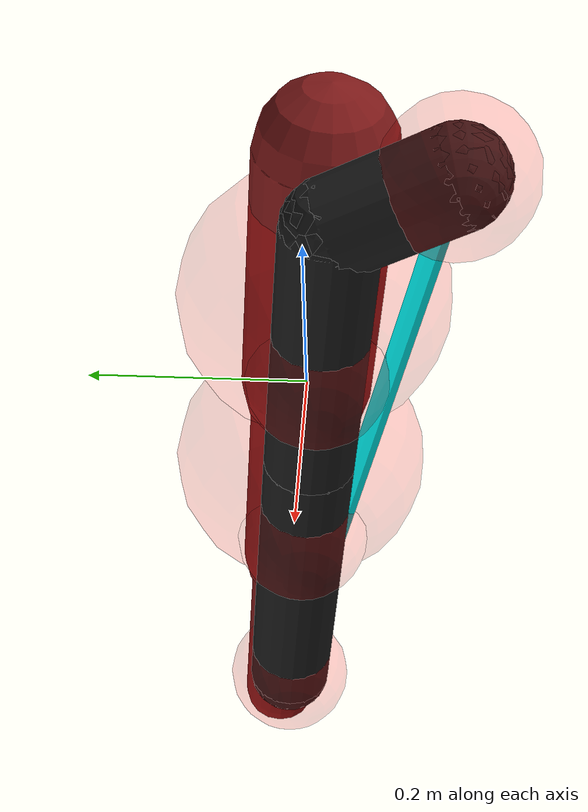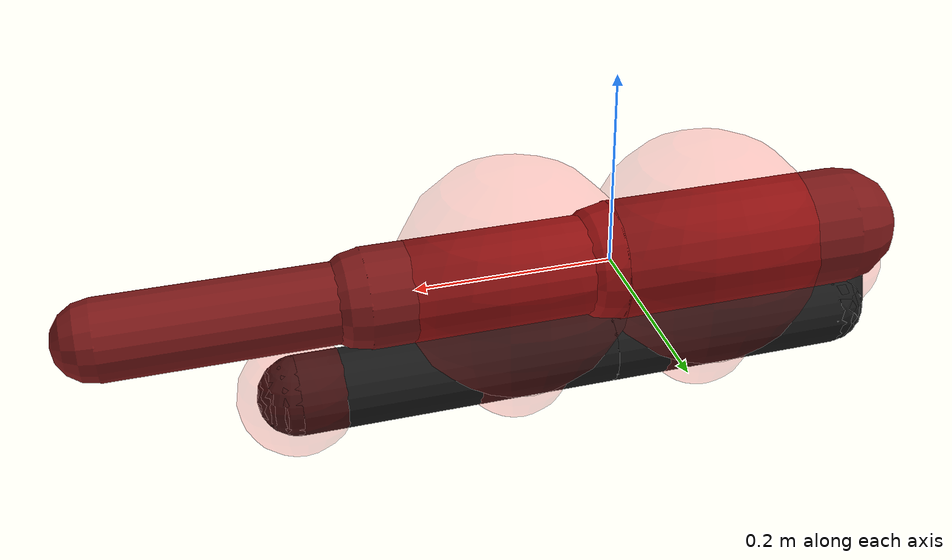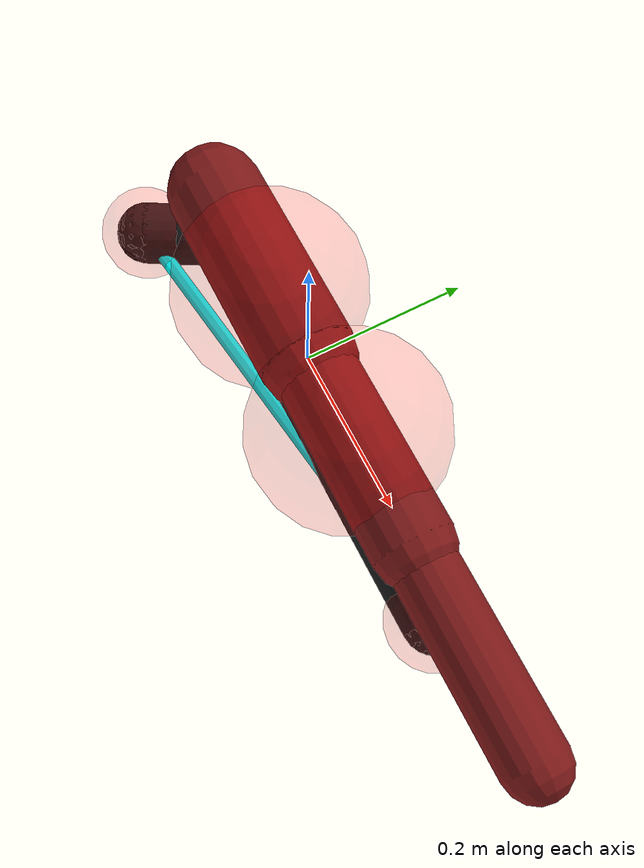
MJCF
<mujoco model="finger with orthotic">
    <option timestep="0.001" iterations="100" solver="Newton" tolerance="1e-8" integrator="implicitfast">
        <flag gravity="disable" contact="disable" energy="enable" />
    </option>

    <compiler angle="degree" />

    <visual>
        <rgba haze=".3 .3 .3 1" />
    </visual>

    <default>
        <joint type="hinge" pos="0 0 0" axis="0 0 1" stiffness="128.39516527813126" damping="0.6419758263906563" />
        <site size="0.06" rgba="1 0 0 .2" />
        <geom type="capsule" size="0.01" rgba=".1 .1 .1 1" />
        <tendon width="0.01" rgba="0 1 1 1" />
    </default>

    <asset>
        <texture type="skybox" builtin="gradient" rgb1="0.6 0.6 0.6" rgb2="0 0 0" width="512" height="512" />
        <texture name="texplane" type="2d" builtin="checker" rgb1=".25 .25 .25" rgb2=".3 .3 .3" width="512" height="512" mark="cross" markrgb=".8 .8 .8" />
        <material name="matplane" reflectance="0.3" texture="texplane" texrepeat="1 1" texuniform="true" />
    </asset>

    <worldbody>
        <light directional="true" diffuse=".8 .8 .8" specular=".2 .2 .2" pos="0 0 5" dir="0 0 -1" />
        <camera name="cam" pos="0 0 -1.2" xyaxes="1.000 0 0 0 -1.000 0" />

        <body name="finger" pos="0 0 0">
            <geom name="finger1" type="capsule" size="0.06" fromto="0 0 0  -.25 0 0" rgba=".5 .1 .1 1" />
            <site name="sPIPL" pos="-.1 0 0" size="0.12" />

            <body pos="0 0 0">
                <geom name="finger2" type="capsule" size="0.05" fromto="0 0 0  .25 0 0" rgba=".5 .1 .1 1" />
                <joint name="PIP" pos="0 0 0" stiffness="0" damping="0" />
                <site name="sPIPR" pos=".1 0 0" size="0.12" />

                <body pos=".25 0 0">
                    <geom name="finger3" type="capsule" size="0.04" fromto="0 0 0  .25 0 0" rgba=".5 .1 .1 1" />
                </body>
            </body>
        </body>

        <body name="orthosis" pos="0 0 -.1">
            <geom name="beamB" type="capsule" size="0.04" fromto="0.0 0.0 0.0 -0.25 -3.061616997868383e-17 0.0" />
            <site name="hBAL" pos="-.1 0 0" size="0.06" />

            <body name="Bnext" pos="0 0 0">
                <joint name="hingeBA" type="hinge" pos="0 0 0" axis="0 0 1" stiffness="128.39516527813126" damping="0.6419758263906563" />
                <site name="hBAR" pos=".1 0 0" size="0.06" />
                <geom name="beamA" type="capsule" size="0.04" fromto="0.0 0.0 0.0 0.3215096549872459 0.0 0.0" />

                <body name="Anext" pos="0.3215096549872459 0.0 0.0">
                    <joint name="hingeAL" type="hinge" pos="0 0 0" axis="0 0 1" stiffness="128.39516527813126" damping="0.6419758263906563" />
                    <geom name="smallBodyAL" type="sphere" size="0.04" pos="0 0 0" />
                    <site name="hAL" pos="0 0 0" size="0.06" />
                </body>
            </body>

            <geom name="beamD" type="capsule" size="0.04" fromto="-0.25 -3.061616997868383e-17 0.0 -0.29803061859433655 -0.08640244004931133 0.0" />
            <body name="Dnext" pos="-0.29803061859433655 -0.08640244004931133 0.0">
                <joint name="hingeDL" type="hinge" pos="0 0 0" axis="0 0 -1" stiffness="128.39516527813126" damping="0.6419758263906563" />
                <geom name="smallBodyDL" type="sphere" size="0.04" pos="0 0 0" />
                <site name="hDL" pos="0 0 0" size="0.06" />
            </body>
        </body>
    </worldbody>

    <equality>

        <weld site1="hBAR" site2="sPIPR" />

    </equality>

    <tendon>
        <spatial name="bendingTendon" limited="true" range="0.6255361957840784 1.2510723915681567" width="0.01" solimplimit="0.001 0.8 0.001 0.5 2" solreflimit="-73.20786900449573 -0.00036603934502247866">
            <site site="hDL" />
            <site site="hAL" />
        </spatial>

        <spatial name="extensionTendon" limited="true" range="0 0.6255361957840784" width="0.01" solimplimit="0.001 0.001 0.001 0.5 1" solreflimit="-11844.320055181513 -394.81066850605043">
            <site site="hDL" />
            <site site="hAL" />
        </spatial>
    </tendon>

    <actuator>
        <motor name="finger_bend" joint="PIP" ctrlrange="-10 10" gear="100" />
    </actuator>

    <sensor>
        <force name="finger_force" site="sPIPR" />
        <torque name="finger_torque" site="sPIPR" />
        <force name="tendon_force" site="hDL" />
    </sensor>
</mujoco>
